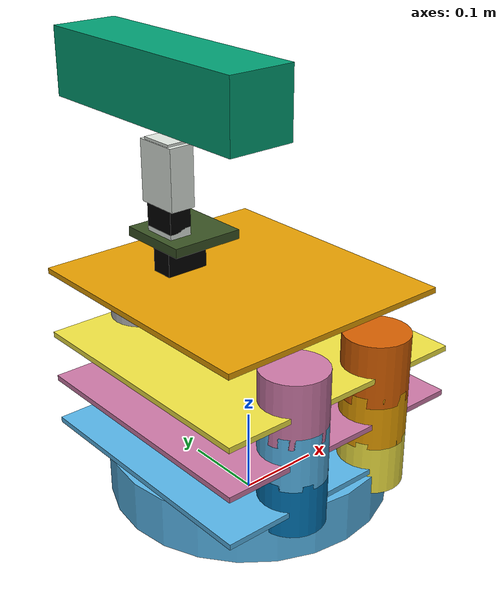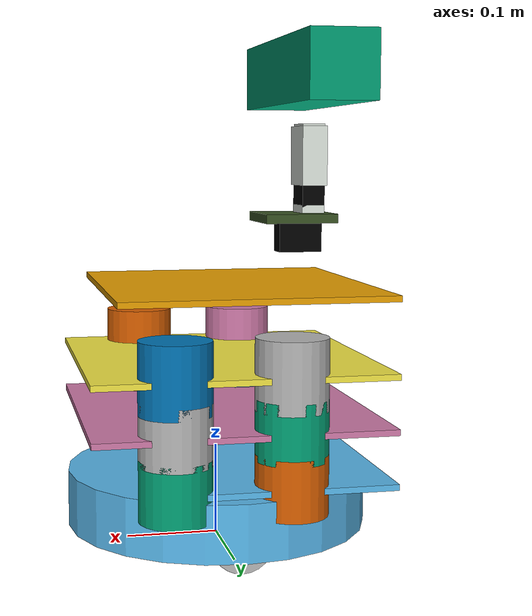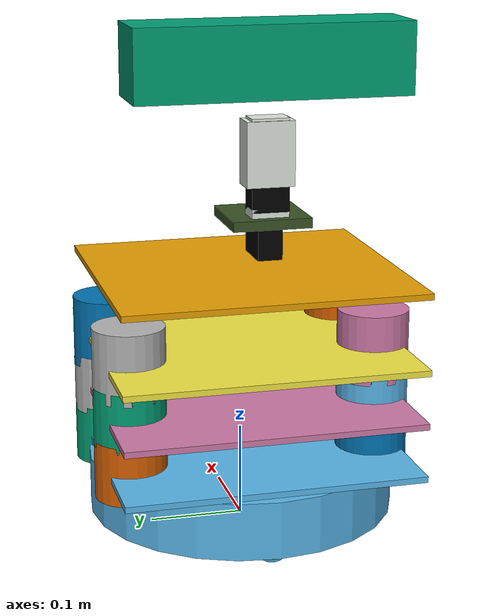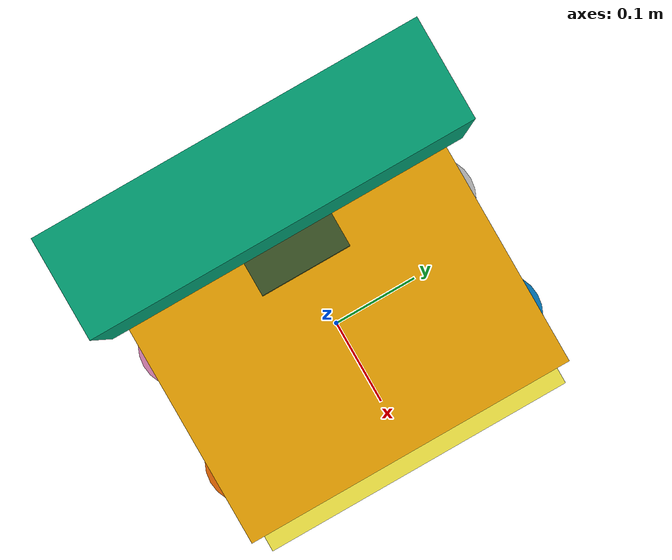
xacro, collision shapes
<?xml version="1.0"?>

<robot name="turtlebot_head_arm"
    xmlns:sensor="http://playerstage.sourceforge.net/gazebo/xmlschema/#sensor"
    xmlns:controller="http://playerstage.sourceforge.net/gazebo/xmlschema/#controller"
    xmlns:interface="http://playerstage.sourceforge.net/gazebo/xmlschema/#interface">

    <!-- Included URDF Files -->
    <xacro:include filename="$(find rbx1_description)/urdf/turtlebot.xacro" />
    <xacro:include filename="$(find rbx1_description)/urdf/head.xacro" />
    <xacro:include filename="$(find rbx1_description)/urdf/arm.xacro" />

	<!-- Load the main TurtleBot body -->
    <turtlebot />

    <!-- Attach the head -->
    <turtlebot_head parent="plate_3_link" color="white">
      <origin xyz="-0.09 0 0.075"/>
    </turtlebot_head>

    <!-- Attach the arm -->
</robot>

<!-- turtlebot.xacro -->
<robot name="turtlebot_create">
  <xacro:include filename="$(find rbx1_description)/urdf/turtlebot_hardware.xacro" />
  <xacro:include filename="$(find rbx1_description)/urdf/gazebo.urdf.xacro"/>

  <material name="Green">
    <color rgba="0.0 0.8 0.0 1.0"/>
  </material>

  <material name="OffWhite">
    <color rgba="0.8 0.8 0.8 0.9"/>
  </material>

  <property name="M_PI" value="3.14159"/>
  <property name="SCALE" value="0.0254"/>
  <property name="MESH_SCALE" value="100"/>
  <property name="base_x" value="0.33" />
  <property name="base_y" value="0.33" />

  <macro name="turtlebot">
  <!-- base_footprint is a fictitious link(frame) that is on the ground right below base_link origin, navigation stack depends on this frame -->

  <link name="base_footprint">
    <inertial>
      <mass value="0.0001" />
      <origin xyz="0 0 0" />
      <inertia ixx="0.0001" ixy="0.0" ixz="0.0"
              iyy="0.0001" iyz="0.0"
              izz="0.0001" />
    </inertial>

    <visual>
      <origin xyz="0 0 0" rpy="0 0 0" />
      <geometry>
        <box size="0.001 0.001 0.001" />
      </geometry>
      <material name="Green" />
    </visual>

    <collision>
      <origin xyz="0 0 0.017" rpy="0 0 0" />
      <geometry>
       <box size="0.001 0.001 0.001" />
      </geometry>
    </collision>
  </link>

  <link name="base_link">
    <inertial>
      <mass value="1" />
      <origin xyz="0 0 0.0308" />
      <inertia ixx="1.0" ixy="0.0" ixz="0.0"
        iyy="1.0" iyz="0.0" izz="1.0" />
    </inertial>

    <visual>
      <origin xyz=" 0 0 0.0308" rpy="0 0 0" />
      <geometry>
        <mesh filename="package://rbx1_description/meshes/create_body.dae" scale="${MESH_SCALE} ${MESH_SCALE} ${MESH_SCALE}"/>
      </geometry>
    </visual>

    <collision>
      <origin xyz="0.0 0.0 0.0308" rpy="0 0 0" />
      <geometry>
        <cylinder length="0.0611632" radius="0.16495"/>
      </geometry>
    </collision>
  </link>

  <link name="wall_sensor_link">
    <inertial>
      <mass value="0.01" />
      <origin xyz="0 0 0"/>
      <inertia ixx="1.0" ixy="0.0" ixz="0.0"
        iyy="1.0" iyz="0.0" izz="1.0" />
    </inertial>
  </link>

  <link name="left_cliff_sensor_link">
    <inertial>
      <mass value="0.01" />
      <origin xyz="0 0 0"/>
      <inertia ixx="1.0" ixy="0.0" ixz="0.0"
        iyy="1.0" iyz="0.0" izz="1.0" />
    </inertial>
  </link>

  <link name="right_cliff_sensor_link">
    <inertial>
      <mass value="0.01" />
      <origin xyz="0 0 0"/>
      <inertia ixx="1.0" ixy="0.0" ixz="0.0"
        iyy="1.0" iyz="0.0" izz="1.0" />
    </inertial>
  </link>

  <link name="leftfront_cliff_sensor_link">
    <inertial>
      <mass value="0.01" />
      <origin xyz="0 0 0"/>
      <inertia ixx="1.0" ixy="0.0" ixz="0.0"
        iyy="1.0" iyz="0.0" izz="1.0" />
    </inertial>
  </link>

  <link name="rightfront_cliff_sensor_link">
    <inertial>
      <mass value="0.01" />
      <origin xyz="0 0 0"/>
      <inertia ixx="1.0" ixy="0.0" ixz="0.0"
        iyy="1.0" iyz="0.0" izz="1.0" />
    </inertial>
  </link>

  <joint name="base_footprint_joint" type="fixed">
    <origin xyz="0 0 0.017" rpy="0 0 0" />
    <parent link="base_footprint"/>
    <child link="base_link" />
  </joint>

  <joint name="base_wall_sensor_joint" type="fixed">
    <origin xyz="0.09 -0.120 0.042" rpy="0 0 -1.0" />
    <parent link="base_link"/>
    <child link="wall_sensor_link" />
  </joint>

  <joint name="base_left_cliff_sensor_joint" type="fixed">
    <origin xyz="0.07 0.14 0.01" rpy="0 1.57079 0" />
    <parent link="base_link"/>
    <child link="left_cliff_sensor_link" />
  </joint>

  <joint name="base_right_cliff_sensor_joint" type="fixed">
    <origin xyz="0.07 -0.14 0.01" rpy="0 1.57079 0" />
    <parent link="base_link"/>
    <child link="right_cliff_sensor_link" />
  </joint>

  <joint name="base_leftfront_cliff_sensor_joint" type="fixed">
    <origin xyz="0.15 0.04 0.01" rpy="0 1.57079 0" />
    <parent link="base_link"/>
    <child link="leftfront_cliff_sensor_link" />
  </joint>

  <joint name="base_rightfront_cliff_sensor_joint" type="fixed">
    <origin xyz="0.15 -0.04 0.01" rpy="0 1.57079 0" />
    <parent link="base_link"/>
    <child link="rightfront_cliff_sensor_link" />
  </joint>

  <link name="left_wheel_link">
    <inertial>
      <origin xyz="0 0 0"/>
      <mass value="0.01" />
      <inertia ixx="1.0" ixy="0.0" ixz="0.0"
        iyy="1.0" iyz="0.0" izz="1.0" />
    </inertial>

    <visual>
      <origin xyz="0 0 0" rpy="0 1.5707 1.5707" />
      <geometry>
        <cylinder radius="0.033" length = "0.023"/>
      </geometry>
    </visual>

    <collision>
      <origin xyz="0 0 0" rpy="0 1.5707 1.5707" />
      <geometry>
        <cylinder radius="0.033" length = "0.023"/>
      </geometry>
    </collision>
  </link>

  <joint name="left_wheel_joint" type="continuous">
    <origin xyz="0 0.13 0.015" rpy="0 0 0"/>
    <parent link="base_link"/>
    <child link="left_wheel_link"/>
    <axis xyz="0 1 0"/>
  </joint>

  <link name="right_wheel_link">
    <inertial>
      <origin xyz="0 0 0"/>
      <mass value="0.01" />
      <inertia ixx="1.0" ixy="0.0" ixz="0.0"
        iyy="1.0" iyz="0.0" izz="1.0" />
    </inertial>

    <visual>
      <origin xyz="0 0 0" rpy="0 1.5707 1.5707" />
      <geometry>
        <cylinder radius="0.033" length = "0.023"/>
      </geometry>
    </visual>

    <collision>
      <origin xyz="0 0 0" rpy="0 1.5707 1.5707" />
      <geometry>
        <cylinder radius="0.033" length = "0.023"/>
      </geometry>
    </collision>
  </link>

  <joint name="right_wheel_joint" type="continuous">
    <origin xyz="0 -0.13 0.015" rpy="0 0 0"/>
    <parent link="base_link"/>
    <child link="right_wheel_link"/>
    <axis xyz="0 1 0"/>
  </joint>

  <link name="rear_wheel_link">
    <inertial>
      <origin xyz="0 0 0"/>
      <mass value="0.001" />
      <inertia ixx="1.0" ixy="0.0" ixz="0.0"
        iyy="1.0" iyz="0.0" izz="1.0" />
    </inertial>

    <visual>
      <origin xyz="0 0 0" rpy="0 1.5707 1.5707"/>
      <geometry>
        <sphere radius="0.018" />
      </geometry>
    </visual>

    <collision>
      <origin xyz="0 0 0" rpy="0 1.5707 1.5707" />
      <geometry>
        <sphere radius="0.018" />
      </geometry>
    </collision>
  </link>
  <joint name="rear_castor_joint" type="fixed">
    <origin xyz="-0.13 0 0.0" rpy="0 0 0"/>
    <parent link="base_link"/>
    <child link="rear_wheel_link"/>
    <axis xyz="0 1 0"/>
  </joint>

  <link name="front_wheel_link">
    <inertial>
      <origin xyz="0 0 0" />
      <mass value="0.01" />
      <inertia ixx="1.0" ixy="0.0" ixz="0.0"
        iyy="1.0" iyz="0.0" izz="1.0" />
    </inertial>

    <visual>
      <origin xyz="0 0 0" rpy="0 1.5707 1.5707"/>
      <geometry>
        <sphere radius="0.018" />
      </geometry>
    </visual>

    <collision>
      <origin xyz="0 0 0" rpy="0 1.5707 1.5707" />
      <geometry>
        <sphere radius="0.018" />
      </geometry>
    </collision>
  </link>

  <joint name="front_castor_joint" type="continuous">
    <origin xyz="0.13 0 0.0" rpy="0 0 0"/>
    <parent link="base_link"/>
    <child link="front_wheel_link"/>
    <axis xyz="0 1 0"/>
  </joint>

  <turtlebot_spacer parent="base_link" number="0" x_loc="-0.00254" y_loc="0.1114679" z_loc="0.062992"/>
  <turtlebot_spacer parent="base_link" number="1" x_loc="-0.00254" y_loc="-0.1114679" z_loc="0.062992"/>
  <turtlebot_spacer parent="base_link" number="2" x_loc="-0.07239" y_loc="-0.1114679" z_loc="0.062992"/>
  <turtlebot_spacer parent="base_link" number="3" x_loc="-0.07239" y_loc="0.1114679" z_loc="0.062992"/>

  <joint name="gyro_joint" type="fixed">
    <origin xyz="0 0 0.04" rpy="0 0 0" />
    <parent link="base_link" />
    <child link="gyro_link" />
  </joint>

  <link name="gyro_link">
    <visual>
      <geometry>
        <box size="0.02 0.035 0.002" />
      </geometry>
      <material name="Green" />
    </visual>
    <inertial>
      <mass value="0.000001" />
      <origin xyz="0 0 0" />
      <inertia ixx="0.0001" ixy="0.0" ixz="0.0"
        iyy="0.0001" iyz="0.0"
        izz="0.0001" />
    </inertial>
  </link>

  <joint name="laser_joint" type="fixed">
    <origin xyz="-0.065 0 0.075" rpy="0 0 0" />
    <parent link="base_link" />
    <child link="laser" />
  </joint>

  <link name="laser">
    <visual>
      <geometry>
        <box size="0.02 0.035 0.002" />
      </geometry>
      <material name="Green" />
    </visual>
    <inertial>
      <mass value="0.000001" />
      <origin xyz="0 0 0" />
      <inertia ixx="0.0001" ixy="0.0" ixz="0.0"
        iyy="0.0001" iyz="0.0"
        izz="0.0001" />
    </inertial>
  </link>

  <joint name="plate_0_joint" type="fixed">
    <origin xyz="-0.04334 0  0.06775704" rpy="0 0 0" />
    <parent link="base_link"/>
    <child link="plate_0_link" />
  </joint>

  <link name="plate_0_link">
    <inertial>
      <mass value="0.01" />
      <origin xyz="0 0 0" />
      <inertia ixx="1.0" ixy="0.0" ixz="0.0"
        iyy="1.0" iyz="0.0"
        izz="1.0" />
    </inertial>

    <visual>
      <origin xyz=" 0 0 0 " rpy="0 0 0" />
      <geometry>
        <mesh filename="package://rbx1_description/meshes/plate_0_logo.dae" scale="${MESH_SCALE} ${MESH_SCALE} ${MESH_SCALE}"/>
      </geometry>
    </visual>

    <collision>
      <origin xyz="0.0 0.0 0.0" rpy="0 0 0" />
      <geometry>
        <box size="0.233502 0.314845 0.006401"/>
      </geometry>
    </collision>
  </link>

  <turtlebot_standoff_2in parent="base_link" number="0" x_loc="0.0676402" y_loc="0.1314196" z_loc="0.0709803"/>
  <turtlebot_standoff_2in parent="base_link" number="1" x_loc="0.0676402" y_loc="-0.1314196" z_loc="0.0709803"/>
  <turtlebot_standoff_2in parent="base_link" number="2" x_loc="-0.052832" y_loc="-0.1314196" z_loc="0.0709803"/>
  <turtlebot_standoff_2in parent="base_link" number="3" x_loc="-0.052832" y_loc="0.1314196" z_loc="0.0709803"/>

  <joint name="plate_1_joint" type="fixed">
    <origin xyz="0.04068 0 0.05715" rpy="0 0 0" />
    <parent link="plate_0_link"/>
    <child link="plate_1_link" />
  </joint>

  <link name="plate_1_link">
    <inertial>
      <mass value="0.1" />
      <origin xyz="0 0 0" />
      <inertia ixx="1.0" ixy="0.0" ixz="0.0"
        iyy="1.0" iyz="0.0"
        izz="1.0" />
    </inertial>

    <visual>
      <origin xyz=" 0 0 0 " rpy="0 0 0" />
      <geometry>
        <mesh filename="package://rbx1_description/meshes/plate_1_logo.dae" scale="${MESH_SCALE} ${MESH_SCALE} ${MESH_SCALE}"/>
      </geometry>
    </visual>

    <collision>
      <origin xyz="0.0 0.0 0.0" rpy="0 0 0" />
      <geometry>
        <box size="0.314856 0.314856 0.006401"/>
      </geometry>
    </collision>
  </link>

  <turtlebot_standoff_2in parent="standoff_2in_0_link" number="4" x_loc="0" y_loc="0" z_loc="0.05715"/>
  <turtlebot_standoff_2in parent="standoff_2in_1_link" number="5" x_loc="0" y_loc="0" z_loc="0.05715"/>
  <turtlebot_standoff_2in parent="standoff_2in_2_link" number="6" x_loc="0" y_loc="0" z_loc="0.05715"/>
  <turtlebot_standoff_2in parent="standoff_2in_3_link" number="7" x_loc="0" y_loc="0" z_loc="0.05715"/>

  <joint name="plate_2_joint" type="fixed">
    <origin xyz="0 0 0.0572008" rpy="0 0 0" />
    <parent link="plate_1_link"/>
    <child link="plate_2_link" />
  </joint>

  <link name="plate_2_link">
    <inertial>
      <mass value="0.01" />
      <origin xyz="0 0 0" />
      <inertia ixx="1.0" ixy="0.0" ixz="0.0"
        iyy="1.0" iyz="0.0"
        izz="1.0" />
    </inertial>

    <visual>
      <origin xyz=" 0 0 0 " rpy="0 0 0" />
      <geometry>
        <mesh filename="package://rbx1_description/meshes/plate_1_logo.dae" scale="${MESH_SCALE} ${MESH_SCALE} ${MESH_SCALE}"/>
      </geometry>
    </visual>

    <collision>
      <origin xyz="0.0 0.0 0.0" rpy="0 0 0" />
      <geometry>
        <box size="0.314856 0.314856 0.006401"/>
      </geometry>
    </collision>
  </link>

  <turtlebot_standoff_3in parent="standoff_2in_4_link" number="0" x_loc="0" y_loc="0" z_loc="0.05715"/>
  <turtlebot_standoff_3in parent="standoff_2in_5_link" number="1" x_loc="0" y_loc="0" z_loc="0.05715"/>
  <turtlebot_standoff_3in parent="standoff_2in_6_link" number="2" x_loc="0" y_loc="0" z_loc="0.05715"/>
  <turtlebot_standoff_3in parent="standoff_2in_7_link" number="3" x_loc="0" y_loc="0" z_loc="0.05715"/>

  <joint name="plate_3_joint" type="fixed">
    <origin xyz="-0.01316 0 0.08" rpy="0 0 0" />
    <parent link="plate_2_link"/>
    <child link="plate_3_link" />
  </joint>

  <link name="plate_3_link">
    <inertial>
      <mass value="0.01" />
      <origin xyz="0 0 0" />
      <inertia ixx="1.0" ixy="0.0" ixz="0.0"
        iyy="1.0" iyz="0.0"
        izz="1.0" />
    </inertial>

    <visual>
      <origin xyz=" 0 0 0 " rpy="0 0 0" />
      <geometry>
        <mesh filename="package://rbx1_description/meshes/plate_2_logo.dae" scale="${MESH_SCALE} ${MESH_SCALE} ${MESH_SCALE}"/>
      </geometry>
    </visual>

    <collision>
      <origin xyz="0.0 0.0 0.0" rpy="0 0 0" />
      <geometry>
        <box size="0.288 0.315 0.006401"/>
      </geometry>
    </collision>
  </link>
  </macro>
</robot>

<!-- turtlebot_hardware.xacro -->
<robot>
  <xacro:property name="M_PI" value="3.14159"/>
  <xacro:property name="M_SCALE" value="0.001"/>

  <xacro:macro name="turtlebot_spacer" params="parent number x_loc y_loc z_loc">
    <joint name="spacer_${number}_joint" type="fixed">
      <origin xyz="${x_loc} ${y_loc} ${z_loc}" rpy="0 0 0" />
      <parent link="${parent}"/>
      <child link="spacer_${number}_link" />
    </joint>

    <link name="spacer_${number}_link">
      <inertial>
        <mass value="0.00001" />
        <origin xyz="0 0 0" />
        <inertia ixx="1.0" ixy="0.0" ixz="0.0"
          iyy="1.0" iyz="0.0"
          izz="1.0" />
      </inertial>

      <visual>
        <origin xyz=" 0 0 0 " rpy="0 0 0" />
        <geometry>
          <mesh filename="package://rbx1_description/meshes/68-02403-125_Spacer.dae" scale="${M_SCALE} ${M_SCALE} ${M_SCALE}" />
        </geometry>
      </visual>

      <collision>
        <origin xyz="0.0 0.0 0.0" rpy="0 0 0" />
        <geometry>
          <cylinder length="0.003175" radius=".0127"/>
        </geometry>
      </collision>
    </link>
  </xacro:macro>

  <xacro:macro name="turtlebot_standoff_1in" params="parent number x_loc y_loc z_loc">
    <joint name="standoff_1in_${number}_joint" type="fixed">
      <origin xyz="${x_loc} ${y_loc} ${z_loc}" rpy="0 0 0" />
      <parent link="${parent}"/>
      <child link="standoff_1in_${number}_link" />
    </joint>

    <link name="standoff_1in_${number}_link">
      <inertial>
        <mass value="0.00001" />
        <origin xyz="0 0 0" />
        <inertia ixx="1.0" ixy="0.0" ixz="0.0"
          iyy="1.0" iyz="0.0"
          izz="1.0" />
      </inertial>

      <visual>
        <origin xyz=" 0 0 0 " rpy="0 0 0" />
        <geometry>
          <mesh filename="package://rbx1_description/meshes/68-04552-1000-RA_Turtlebot_M-F_Standoff.dae" scale="${M_SCALE} ${M_SCALE} ${M_SCALE}"/>
        </geometry>
      </visual>

      <collision>
        <origin xyz="0.0 0.0 0.0" rpy="0 0 0" />
        <geometry>
          <cylinder length="0.0381" radius="0.011113"/>
        </geometry>
      </collision>
    </link>
  </xacro:macro>

  <xacro:macro name="turtlebot_standoff_2in" params="parent number x_loc y_loc z_loc">
    <joint name="standoff_2in_${number}_joint" type="fixed">
      <origin xyz="${x_loc} ${y_loc} ${z_loc}" rpy="0 0 0" />
      <parent link="${parent}"/>
      <child link="standoff_2in_${number}_link" />
    </joint>

    <link name="standoff_2in_${number}_link">
      <inertial>
        <mass value="0.00001" />
        <origin xyz="0 0 0" />
        <inertia ixx="1.0" ixy="0.0" ixz="0.0"
          iyy="1.0" iyz="0.0"
          izz="1.0" />
      </inertial>

      <visual>
        <origin xyz=" 0 0 0 " rpy="0 0 0" />
        <geometry>
          <mesh filename="package://rbx1_description/meshes/68-04552-2000-RA_Turtlebot_M-F_Standoff.dae" scale="${M_SCALE} ${M_SCALE} ${M_SCALE}"/>
        </geometry>
      </visual>

      <collision>
        <origin xyz="0.0 0.0 0.0" rpy="0 0 0" />
        <geometry>
          <cylinder length="0.0635" radius="0.0381"/>
        </geometry>
      </collision>
    </link>
  </xacro:macro>

  <xacro:macro name="turtlebot_standoff_3in" params="parent number x_loc y_loc z_loc">
    <joint name="standoff_3in_${number}_joint" type="fixed">
      <origin xyz="${x_loc} ${y_loc} ${z_loc}" rpy="0 0 0" />
      <parent link="${parent}"/>
      <child link="standoff_3in_${number}_link" />
    </joint>

    <link name="standoff_3in_${number}_link">
      <inertial>
        <mass value="0.00001" />
        <origin xyz="0 0 0" />
        <inertia ixx="1.0" ixy="0.0" ixz="0.0"
          iyy="1.0" iyz="0.0"
          izz="1.0" />
      </inertial>

      <visual>
        <origin xyz=" 0 0 0 " rpy="0 0 0" />
        <geometry>
          <mesh filename="package://rbx1_description/meshes/68-04552-2000-RA_Turtlebot_M-F_Standoff.dae" scale="${M_SCALE} ${M_SCALE} ${M_SCALE*1.5}"/>
        </geometry>
      </visual>

      <collision>
        <origin xyz="0.0 0.0 0.0" rpy="0 0 0" />
        <geometry>
          <cylinder length="0.075" radius="0.0381"/>
        </geometry>
      </collision>
    </link>
  </xacro:macro>

  <xacro:macro name="turtlebot_standoff_8in" params="parent number x_loc y_loc z_loc">
    <joint name="standoff_8in_${number}_joint" type="fixed">
      <origin xyz="${x_loc} ${y_loc} ${z_loc}" rpy="0 0 0" />
      <parent link="${parent}"/>
      <child link="standoff_8in_${number}_link" />
    </joint>

    <link name="standoff_8in_${number}_link">
      <inertial>
        <mass value="0.00001" />
        <origin xyz="0 0 0" />
        <inertia ixx="1.0" ixy="0.0" ixz="0.0"
          iyy="1.0" iyz="0.0"
          izz="1.0" />
      </inertial>

      <visual>
        <origin xyz=" 0 0 0 " rpy="0 0 0" />
        <geometry>
          <mesh filename="package://rbx1_description/meshes/68-02421-8000-RA_Turtlebot_F-F_Standoff.dae" scale="${M_SCALE} ${M_SCALE} ${M_SCALE}"/>
        </geometry>
      </visual>

      <collision>
        <origin xyz="0.0 0.0 0.0" rpy="0 0 0" />
        <geometry>
          <cylinder length="0.2032" radius="0.011113"/>
        </geometry>
      </collision>
    </link>
  </xacro:macro>

</robot>

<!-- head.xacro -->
<robot>
  <property name="MESH_SCALE" value="100"/>

  <xacro:include filename="$(find rbx1_description)/urdf/head_hardware.xacro" />

  <macro name="turtlebot_head" params="parent color *origin">
    <link name="head_base_link" />
    <joint name="head_base_joint" type="fixed">
      <insert_block name="origin" />
      <parent link="${parent}"/>
      <child link="head_base_link" />
    </joint>

    <!-- fake head_pan_link joint -->
    <link name="head_pan_link" />
    <joint name="fake_head_pan_joint" type="fixed">
      <origin xyz="0 0 0" rpy="0 ${M_PI/2} ${M_PI/2}" />
      <parent link="dynamixel_AX12_10_link"/>
      <child link="head_pan_link" />
    </joint>

     <!-- fake head_tilt_link joint -->
    <link name="head_tilt_link" />
    <joint name="fake_head_tilt_joint" type="fixed">
      <origin xyz="0 0 0" rpy="0 0 ${M_PI}" />
      <parent link="dynamixel_AX12_11_link"/>
      <child link="head_tilt_link" />
    </joint>

	<!-- head base plate (needed for collision awareness) -->
	<arm_head_base_plate parent="plate_3_link" number="1" x_loc="-0.027" y_loc="-0.0175" z_loc="0.075" color="green"/>

    <!-- head pan joint -->
    <dynamixel_AX12_fixed parent="head_base_link" number="10" x_loc="0" y_loc="0" z_loc="${-AX12_WIDTH/2}" r="${M_PI/2}" p="0" y="${-M_PI/2}"/>
    <bioloid_F3_head_revolute parent="dynamixel_AX12_10_link" number="10" joint_name="head_pan" x_loc="0" y_loc="${AX12_WIDTH/2 + 0.005}" z_loc="0.0" ulimit="2.9" llimit="-2.9" r="${-M_PI/2}" p="${M_PI/2}" y="${M_PI}" color="${color}"/>
    <dynamixel_AX12_fixed parent="bioloid_F3_head_10_link" number="11" x_loc="0" y_loc="0" z_loc="${-AX12_HEIGHT-F10_HEIGHT+0.001}" r="0" p="${M_PI}" y="0"/>

    <!--head tilt joint -->
    <bioloid_F4_head_revolute parent="dynamixel_AX12_11_link" number="10" joint_name="head_tilt" x_loc="0" y_loc="0" z_loc="0" ulimit="2.9" llimit="-2.9" color="${color}"/>
    <bioloid_F10_fixed parent="bioloid_F4_head_10_link" number="10" x_loc="0" y_loc="0" z_loc="${F4_HEIGHT + F10_HEIGHT/2}" color="${color}"/>

    <joint name="base_kinect_joint" type="fixed">
      <origin xyz="-0.03 0 0.058" rpy="0 0 ${M_PI}" />
      <parent link="bioloid_F10_10_link" />
      <child link="kinect_link" />
    </joint>

    <link name="kinect_link">
      <inertial>
        <mass value="0.00001" />
        <origin xyz="0 0 0" />
        <inertia ixx="1.0" ixy="0.0" ixz="0.0"
          iyy="1.0" iyz="0.0"
          izz="1.0" />
      </inertial>

      <visual>
        <origin xyz="0 0 0 " rpy="0 0 0" />
        <geometry>
          <mesh filename="package://rbx1_description/meshes/kinect.dae" scale="${MESH_SCALE} ${MESH_SCALE} ${MESH_SCALE}"/>
        </geometry>
      </visual>

      <collision>
        <origin xyz="-0.0275 0.0 0.0" rpy="0 0 0" />
        <geometry>
          <box size="0.0730 .2760 0.0720"/>
        </geometry>
      </collision>
    </link>

  <joint name="kinect_depth_joint" type="fixed">
    <origin xyz="0 0.018 0" rpy="0 0 0" />
    <parent link="kinect_link" />
    <child link="kinect_depth_frame" />
  </joint>

  <link name="kinect_depth_frame">
    <inertial>
      <mass value="0.000001" />
      <origin xyz="0 0 0" />
      <inertia ixx="0.0001" ixy="0.0" ixz="0.0"
        iyy="0.0001" iyz="0.0"
        izz="0.0001" />
    </inertial>
  </link>

  <joint name="kinect_depth_optical_joint" type="fixed">
    <origin xyz="0 0 0" rpy="${-M_PI/2} 0 ${-M_PI/2}" />
    <parent link="kinect_depth_frame" />
    <child link="kinect_depth_optical_frame" />
  </joint>

  <link name="kinect_depth_optical_frame">
    <inertial>
      <mass value="0.000001" />
      <origin xyz="0 0 0" />
      <inertia ixx="0.0001" ixy="0.0" ixz="0.0"
        iyy="0.0001" iyz="0.0"
        izz="0.0001" />
    </inertial>
  </link>

  <joint name="kinect_rgb_joint" type="fixed">
    <origin xyz="0 -0.005 0" rpy="0 0 0" />
    <parent link="kinect_link" />
    <child link="kinect_rgb_frame" />
  </joint>

  <link name="kinect_rgb_frame">
    <inertial>
      <mass value="0.000001" />
      <origin xyz="0 0 0" />
      <inertia ixx="0.0001" ixy="0.0" ixz="0.0"
        iyy="0.0001" iyz="0.0"
        izz="0.0001" />
    </inertial>
  </link>

  <joint name="kinect_rgb_optical_joint" type="fixed">
    <origin xyz="0 0 0" rpy="${-M_PI/2} 0 ${-M_PI/2}" />
    <parent link="kinect_rgb_frame" />
    <child link="kinect_rgb_optical_frame" />
  </joint>

  <link name="kinect_rgb_optical_frame">
    <inertial>
      <mass value="0.000001" />
      <origin xyz="0 0 0" />
      <inertia ixx="0.0001" ixy="0.0" ixz="0.0"
        iyy="0.0001" iyz="0.0"
        izz="0.0001" />
    </inertial>
  </link>

  <link name="left_eye_link">
    <visual>
      <origin xyz="0 0 0" rpy="0 1.57 0" />
	  <geometry>
	     <cylinder length="0.01" radius="0.01" />
	  </geometry>
	  <material name="OffWhite" />
	</visual>
    <collision>
	  <origin xyz="0 0 0" rpy="0 1.57 0" />
	  <geometry>
        <cylinder length="0.01" radius="0.01" />
      </geometry>
    </collision>
    <inertial>
       <mass value="0.00001" />
       <origin xyz="0 0 0" />
       <inertia ixx="1.0" ixy="0.0" ixz="0.0"
         iyy="1.0" iyz="0.0"
         izz="1.0" />
     </inertial>
  </link>

  <link name="right_eye_link">
    <visual>
      <origin xyz="0 0 0" rpy="0 1.57 0" />
	  <geometry>
	     <cylinder length="0.01" radius="0.01" />
	  </geometry>
	  <material name="OffWhite" />
	</visual>
    <collision>
	  <origin xyz="0 0 0" rpy="0 1.57 0" />
	  <geometry>
        <cylinder length="0.01" radius="0.01" />
      </geometry>
    </collision>
    <inertial>
       <mass value="0.00001" />
       <origin xyz="0 0 0" />
       <inertia ixx="1.0" ixy="0.0" ixz="0.0"
         iyy="1.0" iyz="0.0"
         izz="1.0" />
     </inertial>
  </link>

  <joint name="left_eye_joint" type="fixed">
    <parent link="kinect_link" />
    <child link="left_eye_link" />
    <origin xyz="-0.005 0.035 0" rpy="0 0 0" />
  </joint>

  <joint name="right_eye_joint" type="fixed">
    <parent link="kinect_link" />
    <child link="right_eye_link" />
    <origin xyz="-0.005 -0.035 0" rpy="0 0 0" />
  </joint>

 </macro>

</robot>

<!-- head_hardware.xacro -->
<robot name="head_hardware" xmlns:xacro="http://ros.org/wiki/xacro">
  <xacro:property name="M_PI" value="3.14159"/>
  <xacro:property name="M_SCALE" value="0.001"/>
  <xacro:property name="F10_HEIGHT" value="0.004"/>
  <xacro:property name="F4_HEIGHT" value="0.0525"/>
  <xacro:property name="F3_HEIGHT" value="0.009"/>
  <xacro:property name="AX12_HEIGHT" value="0.0385"/>
  <xacro:property name="AX12_WIDTH" value="0.038"/>
  <xacro:property name="F2_HEIGHT" value="0.0265"/>
  <xacro:property name="MESH_EXT" value="dae"/>

  <xacro:macro name="bioloid_F10_fixed" params="parent number x_loc y_loc z_loc color">
    <joint name="bioloid_F10_${number}_joint" type="fixed">
      <origin xyz="${x_loc} ${y_loc} ${z_loc}" rpy="0 0 0" />
      <parent link="${parent}"/>
      <child link="bioloid_F10_${number}_link" />
    </joint>

    <link name="bioloid_F10_${number}_link">
      <inertial>
        <mass value="0.00001" />
        <origin xyz="0 0 0" />
        <inertia ixx="1.0" ixy="0.0" ixz="0.0"
          iyy="1.0" iyz="0.0"
          izz="1.0" />
      </inertial>

      <visual>
        <origin xyz=" 0 0 0 " rpy="0 0 0" />
        <geometry>
          <mesh filename="package://rbx1_description/meshes/F10.${MESH_EXT}" scale="${M_SCALE} ${M_SCALE} ${M_SCALE}"/>
        </geometry>
        <material name="${color}"/>
      </visual>

      <collision>
        <origin xyz="0.0 0.0 0.0" rpy="0 0 0" />
        <geometry>
          <box size="0.025 0.038 0.004"/>
        </geometry>
      </collision>
    </link>
  </xacro:macro>

  <xacro:macro name="bioloid_F3_fixed" params="parent number x_loc y_loc z_loc r p y color">
    <joint name="bioloid_F3_${number}_joint" type="fixed">
      <origin xyz="${x_loc} ${y_loc} ${z_loc}" rpy="${r} ${p} ${y}" />
      <parent link="${parent}"/>
      <child link="bioloid_F3_head_${number}_link" />
    </joint>

    <link name="bioloid_F3_${number}_link">
      <inertial>
        <mass value="0.00001" />
        <origin xyz="0 0 0" />
        <inertia ixx="1.0" ixy="0.0" ixz="0.0"
          iyy="1.0" iyz="0.0"
          izz="1.0" />
      </inertial>

      <visual>
        <origin xyz=" 0 0 0 " rpy="0 0 0" />
        <geometry>
          <mesh filename="package://rbx1_description/meshes/F3.${MESH_EXT}" scale="${M_SCALE} ${M_SCALE} ${M_SCALE}"/>
        </geometry>
        <material name="${color}"/>
      </visual>

      <collision>
        <origin xyz="0.0 0.0 -0.0045" rpy="0 0 0" />
        <geometry>
          <box size="0.025 0.038 0.009"/>
        </geometry>
      </collision>
    </link>
  </xacro:macro>

  <xacro:macro name="dynamixel_AX12_fixed" params="parent number x_loc y_loc z_loc r p y">
    <joint name="dynamixel_AX12_${number}_joint" type="fixed">
      <origin xyz="${x_loc} ${y_loc} ${z_loc}" rpy="${r} ${p} ${y}" />
      <parent link="${parent}"/>
      <child link="dynamixel_AX12_${number}_link" />
    </joint>

    <link name="dynamixel_AX12_${number}_link">
      <inertial>
        <mass value="0.00001" />
        <origin xyz="0 0 0" />
        <inertia ixx="1.0" ixy="0.0" ixz="0.0"
          iyy="1.0" iyz="0.0"
          izz="1.0" />
      </inertial>

      <visual>
        <origin xyz=" 0 0 0 " rpy="0 0 0" />
        <geometry>
          <mesh filename="package://rbx1_description/meshes/ax12_box.${MESH_EXT}" scale="1 1 1"/>
        </geometry>
        <material name="black"/>
      </visual>

      <collision>
        <origin xyz="0.0 0.0 -0.0045" rpy="0 0 0" />
        <geometry>
          <box size="0.025 0.038 0.009"/>
        </geometry>
      </collision>
    </link>
  </xacro:macro>

  <xacro:macro name="bioloid_F3_head_revolute" params="parent number joint_name x_loc y_loc z_loc ulimit llimit r p y color">
    <joint name="${joint_name}_joint" type="revolute">
      <origin xyz="${x_loc} ${y_loc} ${z_loc}" rpy="${r} ${p} ${y}" />
      <parent link="${parent}"/>
       <axis xyz="0 0 -1"/>
      <limit effort="30" velocity="1.0" lower="${llimit}" upper="${ulimit}" />
      <child link="bioloid_F3_head_${number}_link" />
    </joint>

    <link name="bioloid_F3_head_${number}_link">
      <inertial>
        <mass value="0.00001" />
        <origin xyz="0 0 0" />
        <inertia ixx="1.0" ixy="0.0" ixz="0.0"
          iyy="1.0" iyz="0.0"
          izz="1.0" />
      </inertial>

      <visual>
        <origin xyz=" 0 0 0 " rpy="0 0 0" />
        <geometry>
          <mesh filename="package://rbx1_description/meshes/F3.${MESH_EXT}" scale="${M_SCALE} ${M_SCALE} ${M_SCALE}"/>
        </geometry>
        <material name="${color}"/>
      </visual>

      <collision>
        <origin xyz="0.0 0.0 -0.0045" rpy="0 0 0" />
        <geometry>
          <box size="0.025 0.038 0.009"/>
        </geometry>
      </collision>
    </link>
  </xacro:macro>

  <xacro:macro name="bioloid_F4_head_revolute" params="parent number joint_name x_loc y_loc z_loc ulimit llimit color">
    <joint name="${joint_name}_joint" type="revolute">
      <origin xyz="${x_loc} ${y_loc} ${z_loc}" rpy="0 0 0" />
      <parent link="${parent}"/>
      <axis xyz="0 -1 0"/>
      <limit effort="30" velocity="1.0" lower="${llimit}" upper="${ulimit}" />
      <child link="bioloid_F4_head_${number}_link" />
    </joint>

    <link name="bioloid_F4_head_${number}_link">
      <inertial>
        <mass value="0.00001" />
        <origin xyz="0 0 0" />
        <inertia ixx="1.0" ixy="0.0" ixz="0.0"
          iyy="1.0" iyz="0.0"
          izz="1.0" />
      </inertial>

      <visual>
        <origin xyz=" 0 0 0 " rpy="0 0 0" />
        <geometry>
          <mesh filename="package://rbx1_description/meshes/F4.${MESH_EXT}" scale="${M_SCALE} ${M_SCALE} ${M_SCALE}"/>
        </geometry>
        <material name="${color}"/>
      </visual>

      <collision>
        <origin xyz="0.0 0.0 0.0215" rpy="0 0 0" />
        <geometry>
          <box size="0.028 0.0485 0.065"/>
        </geometry>
      </collision>
    </link>
  </xacro:macro>

</robot>

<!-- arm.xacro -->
<robot>
  <xacro:include filename="$(find rbx1_description)/urdf/arm_hardware.xacro" />

  <material name="white">
    <color rgba="0.87 0.90 0.87 1.0"/>
  </material>
  <material name="black">
    <color rgba="0.0 0.0 0.0 1.0"/>
  </material>
  <material name="green">
    <color rgba="0.22 0.32 0.14 1.0"/>
  </material>

  <macro name="turtlebot_arm" params="parent color gripper_color *origin">
    <link name="arm_base_link" />
    <joint name="arm_base_joint" type="fixed">
      <insert_block name="origin" />
      <parent link="${parent}"/>
      <child link="arm_base_link" />
    </joint>

    <!-- fake gripper_link joint -->
    <link name="gripper_link" />
    <joint name="gripper_link_joint" type="fixed">
      <origin xyz="0 0 .112" rpy="0 -${M_PI/2} 0" />
      <parent link="bioloid_F2_0_link"/>
      <child link="gripper_link" />
    </joint>

	<!-- arm base plate (needed for collision awareness) -->
	<arm_head_base_plate parent="arm_base_link" number="0" x_loc="0.035" y_loc="-0.0175" z_loc="0" color="green"/>

    <!-- shoulder pan joint -->
    <dynamixel_AX12_fixed parent="arm_base_link" number="0" x_loc="0." y_loc="0" z_loc="${-AX12_WIDTH/2}" r="${M_PI/2}" p="0" y="${M_PI/2}"/>
    <bioloid_F3_revolute parent="dynamixel_AX12_0_link" number="0" joint_name="arm_shoulder_pan" x_loc="0" y_loc="${AX12_WIDTH/2 + 0.005}" z_loc="0" r="${-M_PI/2}" p="${M_PI/2}" y="${-M_PI}" color="${color}"/>
    <dynamixel_AX12_fixed parent="bioloid_F3_0_link" number="1" x_loc="0" y_loc="0" z_loc="${-AX12_HEIGHT-F10_HEIGHT+0.001}" r="0" p="${M_PI}" y="0"/>
    <!--shoulder lift joint -->
    <bioloid_F4_revolute parent="dynamixel_AX12_1_link" number="0" joint_name="arm_shoulder_lift" x_loc="0" y_loc="0" z_loc="0" color="${color}"/>
    <bioloid_F10_fixed parent="bioloid_F4_0_link" number="0" x_loc="0" y_loc="0" z_loc="${F4_HEIGHT+F10_HEIGHT/2}" color="${color}"/>
    <bioloid_F10_fixed parent="bioloid_F10_0_link" number="1" x_loc="0" y_loc="0" z_loc="${F10_HEIGHT}" color="${color}"/>
    <bioloid_F10_fixed parent="bioloid_F10_1_link" number="2" x_loc="0" y_loc="0" z_loc="${F10_HEIGHT}" color="${color}"/>
    <bioloid_F3_fixed parent="bioloid_F10_2_link" number="1" x_loc="0" y_loc="0" z_loc="${F10_HEIGHT/2}" r="0" p="${M_PI}" y="0" color="${color}"/>
    <!--elbow joint -->
    <dynamixel_AX12_fixed parent="bioloid_F3_1_link" number="2" x_loc="0" y_loc="0" z_loc="${-AX12_HEIGHT-F10_HEIGHT+0.001}" r="0" p="${M_PI}" y="0"/>
    <bioloid_F4_revolute parent="dynamixel_AX12_2_link" number="1" joint_name="arm_elbow_flex" x_loc="0" y_loc="0" z_loc="0" color="${color}"/>
    <bioloid_F10_fixed parent="bioloid_F4_1_link" number="3" x_loc="0" y_loc="0" z_loc="${F4_HEIGHT+F10_HEIGHT/2}" color="${color}"/>
    <bioloid_F10_fixed parent="bioloid_F10_3_link" number="4" x_loc="0" y_loc="0" z_loc="${F10_HEIGHT}" color="${color}"/>
    <bioloid_F10_fixed parent="bioloid_F10_4_link" number="5" x_loc="0" y_loc="0" z_loc="${F10_HEIGHT}" color="${color}"/>
    <bioloid_F3_fixed parent="bioloid_F10_5_link" number="2" x_loc="0" y_loc="0" z_loc="${F10_HEIGHT/2}" r="0" p="${M_PI}" y="0" color="${color}"/>
    <!--wrist joint-->
    <dynamixel_AX12_fixed parent="bioloid_F3_2_link" number="3" x_loc="0" y_loc="0" z_loc="${-AX12_HEIGHT-F10_HEIGHT+0.001}" r="0" p="${M_PI}" y="0"/>
    <bioloid_F2_revolute parent="dynamixel_AX12_3_link" number="0" joint_name="arm_wrist_flex" x_loc="0" y_loc="0" z_loc="0" ulimit="2.9" llimit="-2.9" color="${color}"/>
    <bioloid_F3_fixed parent="bioloid_F2_0_link" number="3" x_loc="0.000" y_loc="0.016" z_loc="${F2_HEIGHT}" r="0" p="${M_PI}" y="${-M_PI/2}" color="${color}"/>
    <!--gripper joint -->
    <dynamixel_AX12_fixed parent="bioloid_F3_3_link" number="4" x_loc="-0.02275" y_loc="0" z_loc="${-AX12_WIDTH/2}" r="${M_PI}" p="${M_PI/2}" y="0"/>
    <!--finger 1-->
    <bioloid_F2_revolute parent="dynamixel_AX12_4_link" number="1" joint_name="gripper" x_loc="0" y_loc="0" z_loc="0" ulimit="0.50" llimit="-0.60" color="${color}"/>
    <finger_fixed parent="bioloid_F2_1_link" number="0" x_loc="0" y_loc="0" z_loc="${F2_HEIGHT}" r="0" p="0" y="0" color="${gripper_color}"/>
    <!--finger 2-->
    <bioloid_F3_fixed parent="dynamixel_AX12_4_link" number="4" x_loc="0" y_loc="0" z_loc="${-AX12_HEIGHT-F10_HEIGHT+0.001}" r="0" p="${M_PI}" y="0" color="${color}"/>
    <finger_fixed parent="bioloid_F3_4_link" number="1" x_loc="0" y_loc="0" z_loc="0" r="0" p="0" y="${M_PI}" color="${gripper_color}"/>
  </macro>

</robot>

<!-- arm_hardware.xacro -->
<robot name="arm_hardware" xmlns:xacro="http://ros.org/wiki/xacro">
  <xacro:property name="M_PI" value="3.14159"/>
  <xacro:property name="M_SCALE" value="0.001"/>
  <xacro:property name="MESH_SCALE" value="100"/>
  <xacro:property name="F10_HEIGHT" value="0.004"/>
  <xacro:property name="F4_HEIGHT" value="0.0525"/>
  <xacro:property name="F3_HEIGHT" value="0.009"/>
  <xacro:property name="AX12_HEIGHT" value="0.0385"/>
  <xacro:property name="AX12_WIDTH" value="0.038"/>
  <xacro:property name="AX12_DEPTH" value="0.048"/>
  <xacro:property name="F2_HEIGHT" value="0.0265"/>
  <xacro:property name="MESH_EXT" value="dae"/>

  <xacro:macro name="arm_head_base_plate" params="parent number x_loc y_loc z_loc color">
    <joint name="arm_head_base_plate_${number}_joint" type="fixed">
      <origin xyz="${x_loc} ${y_loc} ${z_loc}" rpy="0 0 0" />
      <parent link="${parent}"/>
      <child link="arm_head_base_plate_${number}_link" />
    </joint>

    <link name="arm_head_base_plate_${number}_link">
      <inertial>
        <mass value="0.00001" />
        <origin xyz="0 0 0" />
        <inertia ixx="1.0" ixy="0.0" ixz="0.0"
          iyy="1.0" iyz="0.0"
          izz="1.0" />
      </inertial>

      <visual>
        <origin xyz="0 0 0" rpy="0 0 0" />
        <geometry>
          <mesh filename="package://rbx1_description/meshes/arm_head_base_plate.dae" scale="${M_SCALE} ${M_SCALE} ${M_SCALE}"/>
        </geometry>
        <material name="${color}"/>
      </visual>

      <collision>
        <origin xyz="-0.045 0.0175 0" rpy="0 0 0" />
        <geometry>
          <box size="0.08 0.08 0.01"/>
        </geometry>
      </collision>
    </link>
  </xacro:macro>

  <xacro:macro name="bioloid_F10_fixed" params="parent number x_loc y_loc z_loc color">
    <joint name="bioloid_F10_${number}_joint" type="fixed">
      <origin xyz="${x_loc} ${y_loc} ${z_loc}" rpy="0 0 0" />
      <parent link="${parent}"/>
      <child link="bioloid_F10_${number}_link" />
    </joint>

    <link name="bioloid_F10_${number}_link">
      <inertial>
        <mass value="0.00001" />
        <origin xyz="0 0 0" />
        <inertia ixx="1.0" ixy="0.0" ixz="0.0"
          iyy="1.0" iyz="0.0"
          izz="1.0" />
      </inertial>

      <visual>
        <origin xyz=" 0 0 0 " rpy="0 0 0" />
        <geometry>
          <mesh filename="package://rbx1_description/meshes/F10.${MESH_EXT}" scale="${M_SCALE} ${M_SCALE} ${M_SCALE}"/>
        </geometry>
        <material name="${color}"/>
      </visual>

      <collision>
        <origin xyz="0.0 0.0 0.0" rpy="0 0 0" />
        <geometry>
          <box size="0.025 0.038 0.004"/>
        </geometry>
      </collision>
    </link>
  </xacro:macro>

  <xacro:macro name="finger_fixed" params="parent number x_loc y_loc z_loc r p y color">
    <joint name="finger_${number}_joint" type="fixed">
      <origin xyz="${x_loc} ${y_loc} ${z_loc}" rpy="${r} ${p} ${y}" />
      <parent link="${parent}"/>
      <child link="finger_${number}_link" />
    </joint>

    <link name="finger_${number}_link">
      <inertial>
        <mass value="0.00001" />
        <origin xyz="0 0 0" />
        <inertia ixx="1.0" ixy="0.0" ixz="0.0"
          iyy="1.0" iyz="0.0"
          izz="1.0" />
      </inertial>

      <visual>
        <origin xyz=" 0 0 0 " rpy="0 0 0" />
        <geometry>
          <mesh filename="package://rbx1_description/meshes/finger.${MESH_EXT}" scale="${M_SCALE} ${M_SCALE} ${M_SCALE}"/>
        </geometry>
        <material name="${color}"/>
      </visual>

      <collision>
        <origin xyz="0.02645 0.0 -0.00655" rpy="0 0 0" />
        <geometry>
          <box size="0.0783 0.03801 0.0193"/>
        </geometry>
      </collision>
    </link>
  </xacro:macro>

  <xacro:macro name="bioloid_F3_fixed" params="parent number x_loc y_loc z_loc r p y color">
    <joint name="bioloid_F3_${number}_joint" type="fixed">
      <origin xyz="${x_loc} ${y_loc} ${z_loc}" rpy="${r} ${p} ${y}" />
      <parent link="${parent}"/>
      <child link="bioloid_F3_${number}_link" />
    </joint>

    <link name="bioloid_F3_${number}_link">
      <inertial>
        <mass value="0.00001" />
        <origin xyz="0 0 0" />
        <inertia ixx="1.0" ixy="0.0" ixz="0.0"
          iyy="1.0" iyz="0.0"
          izz="1.0" />
      </inertial>

      <visual>
        <origin xyz="0 0 0 " rpy="0 0 0" />
        <geometry>
          <mesh filename="package://rbx1_description/meshes/F3.${MESH_EXT}" scale="${M_SCALE} ${M_SCALE} ${M_SCALE}"/>
        </geometry>
        <material name="${color}"/>
      </visual>

      <collision>
        <origin xyz="0.0 0.0 -0.0045" rpy="0 0 0" />
        <geometry>
          <box size="0.025 0.038 0.009"/>
        </geometry>
      </collision>
    </link>
  </xacro:macro>

  <xacro:macro name="dynamixel_AX12_fixed" params="parent number x_loc y_loc z_loc r p y">
    <joint name="dynamixel_AX12_${number}_joint" type="fixed">
      <origin xyz="${x_loc} ${y_loc} ${z_loc}" rpy="${r} ${p} ${y}" />
      <parent link="${parent}"/>
      <child link="dynamixel_AX12_${number}_link" />
    </joint>

    <link name="dynamixel_AX12_${number}_link">
      <inertial>
        <mass value="0.00001" />
        <origin xyz="0 0 0" />
        <inertia ixx="1.0" ixy="0.0" ixz="0.0"
          iyy="1.0" iyz="0.0"
          izz="1.0" />
      </inertial>

      <visual>
        <origin xyz="0 0 0 " rpy="0 0 0" />
        <geometry>
          <mesh filename="package://rbx1_description/meshes/ax12_box.${MESH_EXT}" scale="${MESH_SCALE} ${MESH_SCALE} ${MESH_SCALE}"/>
        </geometry>
        <material name="black"/>
      </visual>

      <collision>
        <origin xyz="0.0 0.0 -0.01241" rpy="0 0 0" />
        <geometry>
          <box size="0.025 0.038 0.04762"/>
        </geometry>
      </collision>
    </link>
  </xacro:macro>

  <xacro:macro name="bioloid_F3_revolute" params="parent number joint_name x_loc y_loc z_loc r p y color">
    <joint name="${joint_name}_joint" type="revolute">
      <origin xyz="${x_loc} ${y_loc} ${z_loc}" rpy="${r} ${p} ${y}" />
      <parent link="${parent}"/>
       <axis xyz="0 0 -1"/>
      <limit effort="30" velocity="1.0" lower="-2.9" upper="2.9" />
      <child link="bioloid_F3_${number}_link" />
    </joint>

    <link name="bioloid_F3_${number}_link">
      <inertial>
        <mass value="0.00001" />
        <origin xyz="0 0 0" />
        <inertia ixx="1.0" ixy="0.0" ixz="0.0"
          iyy="1.0" iyz="0.0"
          izz="1.0" />
      </inertial>

      <visual>
        <origin xyz=" 0 0 0 " rpy="0 0 0" />
        <geometry>
          <mesh filename="package://rbx1_description/meshes/F3.${MESH_EXT}" scale="${M_SCALE} ${M_SCALE} ${M_SCALE}"/>
        </geometry>
        <material name="${color}"/>
      </visual>

      <collision>
        <origin xyz="0.0 0.0 -0.0045" rpy="0 0 0" />
        <geometry>
          <box size="0.025 0.038 0.009"/>
        </geometry>
      </collision>
    </link>
  </xacro:macro>

  <xacro:macro name="bioloid_F2_revolute" params="parent number joint_name x_loc y_loc z_loc ulimit llimit color">
    <joint name="${joint_name}_joint" type="revolute">
      <origin xyz="${x_loc} ${y_loc} ${z_loc}" rpy="0 0 0" />
      <parent link="${parent}"/>
       <axis xyz="0 1 0"/>
      <limit effort="30" velocity="1.0" lower="${llimit}" upper="${ulimit}" />
      <child link="bioloid_F2_${number}_link" />
    </joint>

    <link name="bioloid_F2_${number}_link">
      <inertial>
        <mass value="0.00001" />
        <origin xyz="0 0 0" />
        <inertia ixx="1.0" ixy="0.0" ixz="0.0"
          iyy="1.0" iyz="0.0"
          izz="1.0" />
      </inertial>

      <visual>
        <origin xyz="0 0 0 " rpy="0 0 0" />
        <geometry>
          <mesh filename="package://rbx1_description/meshes/F2.${MESH_EXT}" scale="${M_SCALE} ${M_SCALE} ${M_SCALE}"/>
        </geometry>
        <material name="${color}"/>
      </visual>

      <collision>
        <origin xyz="0.0 0.0 0.00775" rpy="0 0 0" />
        <geometry>
          <box size="0.025 0.0485 0.0375"/>
        </geometry>
      </collision>
    </link>
  </xacro:macro>

  <xacro:macro name="bioloid_F4_revolute" params="parent number joint_name x_loc y_loc z_loc color">
    <joint name="${joint_name}_joint" type="revolute">
      <origin xyz="${x_loc} ${y_loc} ${z_loc}" rpy="0 0 0" />
      <parent link="${parent}"/>
       <axis xyz="0 1 0"/>
      <limit effort="30" velocity="1.0" lower="-2.9" upper="2.9" />
      <child link="bioloid_F4_${number}_link" />
    </joint>

    <link name="bioloid_F4_${number}_link">
      <inertial>
        <mass value="0.00001" />
        <origin xyz="0 0 0" />
        <inertia ixx="1.0" ixy="0.0" ixz="0.0"
          iyy="1.0" iyz="0.0"
          izz="1.0" />
      </inertial>

      <visual>
        <origin xyz="0 0 0 " rpy="0 0 0" />
        <geometry>
          <mesh filename="package://rbx1_description/meshes/F4.${MESH_EXT}" scale="${M_SCALE} ${M_SCALE} ${M_SCALE}"/>
        </geometry>
        <material name="${color}"/>
      </visual>

      <collision>
        <origin xyz="0.0 0.0 0.0215" rpy="0 0 0" />
        <geometry>
          <box size="0.028 0.0485 0.065"/>
        </geometry>
      </collision>
    </link>
  </xacro:macro>

</robot>
